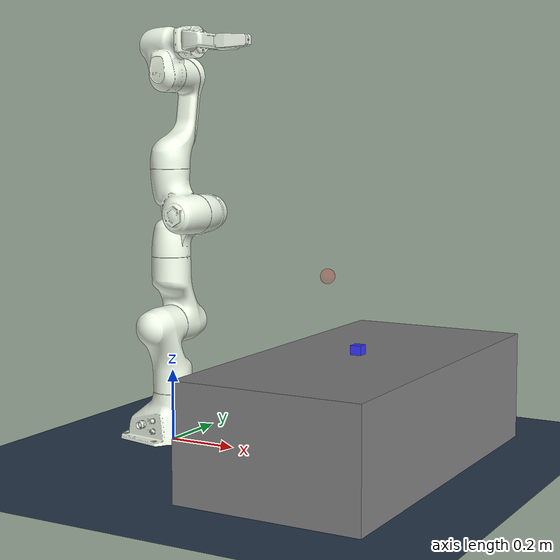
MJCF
<?xml version="1.0" encoding="utf-8"?>
<mujoco model="franka_reacher">
  <compiler meshdir=""/>
	<option noslip_iterations="5">
		<flag warmstart="enable"></flag>
	</option>
  <default>
    <!-- Contact softness params are solref[0,1] and set solimp[1] to 1
    Defaults solimp="0.9 0.95 0.01" solref="0.02 1" -->
    <geom solimp="0.9 1 0.01" solref="-1000 -100" condim="4"/>
  </default>

	<include file="panda/basic_scene.xml"/>
  <include file="panda/assets.xml"/>

	<worldbody>
    <include file="panda/chain0.xml"/>
    <site name="target0" pos="0.5 0 0.5" size="0.02 0.02 0.02" rgba="1 0 0 0.2" type="sphere"></site>

		<body pos="0.6 0 0.15" name="table0">
			<geom size="0.25 0.5 0.15" type="box" mass="2000"></geom>
      <body pos="-0.01 0 0.16" name="object0">
      <joint armature="0" axis="1 0 0" name="objx" damping="0" limited="false" pos="0 0 0" stiffness="0" type="slide"/>
      <joint armature="0" axis="0 1 0" name="objy" damping="0" limited="false" pos="0 0 0" stiffness="0" type="slide"/>
      <joint armature="0" axis="0 0 1" name="objz" damping="0" limited="false" pos="0 0 0" stiffness="0" type="slide"/>
			<geom size="0.015 0.015 0.015" type="box" density="100" rgba = "0.2 0.2 1 1" condim="4"></geom>
		</body>
		</body>

	</worldbody>
  <include file="panda/actuator0.xml"/>

  <keyframe> <!-- To visualize in mujoco's simulate executable -->
    <key qpos='0 0.1763 -0.000316538 -1.76272 -0.00844537 0.35995 0 0.04 0.04 0.02 0 0'/>
  </keyframe>

</mujoco>

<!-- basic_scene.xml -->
<mujocoinclude>

    <asset>
        <texture name="texplane" type="2d" builtin="checker" rgb1=".2 .3 .4" rgb2=".1 0.15 0.2"
                width="512" height="512"/>
        <material name="MatGnd" reflectance="0." texture="texplane" texrepeat="1 1" texuniform="true"/>
    </asset>

    <worldbody>
        <!-- hack: reduce shadows, and cast them behind the robot -->
        <light castshadow="false" directional="false" diffuse=".8 .8 .8" specular="0.3 0.3 0.3" pos="1 0 3" dir="-1 0 -3" />
        <light directional="false" diffuse=".8 .8 .8" specular="0.3 0.3 0.3" pos="1 0 3" dir="-1 0 -3" />
        <light directional="false" diffuse=".8 .8 .8" specular="0.3 0.3 0.3" pos="1 0 3" dir="-1 0 -3" />
        <geom name="ground" pos="0 0 0" size="5 5 10" material="MatGnd" type="plane" contype="1" conaffinity="1"/>
    </worldbody>
</mujocoinclude>

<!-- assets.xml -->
<mujocoinclude>
    <compiler angle="radian"/>
    <option timestep="0.002"/>
    <size nuser_actuator="5"/>

    <asset>
        <mesh name="link0_col" file="panda/meshes/collision/link0.stl"/>
        <mesh name="link1_col" file="panda/meshes/collision/link1.stl"/>
        <mesh name="link2_col" file="panda/meshes/collision/link2.stl"/>
        <mesh name="link3_col" file="panda/meshes/collision/link3.stl"/>
        <mesh name="link4_col" file="panda/meshes/collision/link4.stl"/>
        <mesh name="link5_col" file="panda/meshes/collision/link5.stl"/>
        <mesh name="link6_col" file="panda/meshes/collision/link6.stl"/>
        <mesh name="link7_col" file="panda/meshes/collision/link7.stl"/>
        <mesh name="hand_col" file="panda/meshes/collision/hand.stl"/>
        <mesh name="finger_col" file="panda/meshes/collision/finger.stl" scale='1.75 1.0 1.75'/>
        <mesh name="link0_viz" file="panda/meshes/visual/link0.stl"/>
        <mesh name="link1_viz" file="panda/meshes/visual/link1.stl"/>
        <mesh name="link2_viz" file="panda/meshes/visual/link2.stl"/>
        <mesh name="link3_viz" file="panda/meshes/visual/link3.stl"/>
        <mesh name="link4_viz" file="panda/meshes/visual/link4.stl"/>
        <mesh name="link5_viz" file="panda/meshes/visual/link5.stl"/>
        <mesh name="link6_viz" file="panda/meshes/visual/link6.stl"/>
        <mesh name="link7_viz" file="panda/meshes/visual/link7.stl"/>
        <mesh name="hand_viz" file="panda/meshes/visual/hand.stl"/>
        <mesh name="finger_viz" file="panda/meshes/collision/finger.stl" scale='1.75 1.0 1.75'/>
    </asset>

    <default>
        <default class="panda">
            <joint pos="0 0 0" axis="0 0 1" limited="true"/>
            <position forcelimited="true" ctrllimited="true" user="1002 40 2001 -0.005 0.005"/>
            <default class="panda_viz">
                <geom contype="0" conaffinity="0" group="0" type="mesh" rgba=".95 .99 .92 1" mass="0"/>
            </default>

            <default class="panda_col">
                <geom contype="1" conaffinity="1" group="3" type="mesh" rgba=".5 .6 .7 1"/>
            </default>
            <default class="panda_arm">
                <joint damping="100"/>
            </default>
             <default class="panda_forearm">
                <joint damping="10"/>
            </default>
             <default class="panda_finger">
                <joint damping="100" armature='5'/>
                <geom friction="1 0.5 0.0001" solref="0.01 1" solimp="0.8 0.9 0.001" margin="0.001" user="0" rgba="0.5 0.6 0.7 .4" contype="1" conaffinity="0" condim="6" group="3" />
                <position user="1002 40 2001 -0.0001 0.0001"/>
            </default>
        </default>

        <default class="panda_overlay">
            <joint limited="false" damping="1000" armature="1" frictionloss="10"/>
            <geom contype="0" conaffinity="0" group="2" type="mesh" rgba=".42 0.42 0.42 .5"/>
        </default>
    </default>

    <sensor>
        <jointpos name="fr_arm_jp1" joint="panda0_joint1"/>
        <jointpos name="fr_arm_jp2" joint="panda0_joint2"/>
        <jointpos name="fr_arm_jp3" joint="panda0_joint3"/>
        <jointpos name="fr_arm_jp4" joint="panda0_joint4"/>
        <jointpos name="fr_arm_jp5" joint="panda0_joint5"/>
        <jointpos name="fr_arm_jp6" joint="panda0_joint6"/>
        <jointpos name="fr_arm_jp7" joint="panda0_joint7"/>
        <jointpos name="fr_fin_jp1" joint="panda0_finger_joint1"/>
        <jointpos name="fr_fin_jp2" joint="panda0_finger_joint2"/>
        <jointvel name="fr_arm_jv1" joint="panda0_joint1"/>
        <jointvel name="fr_arm_jv2" joint="panda0_joint2"/>
        <jointvel name="fr_arm_jv3" joint="panda0_joint3"/>
        <jointvel name="fr_arm_jv4" joint="panda0_joint4"/>
        <jointvel name="fr_arm_jv5" joint="panda0_joint5"/>
        <jointvel name="fr_arm_jv6" joint="panda0_joint6"/>
        <jointvel name="fr_arm_jv7" joint="panda0_joint7"/>
        <jointvel name="fr_fin_jv1" joint="panda0_finger_joint1"/>
        <jointvel name="fr_fin_jv2" joint="panda0_finger_joint2"/>
    </sensor>

</mujocoinclude>

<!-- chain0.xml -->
<mujocoinclude>

<!-- Robot limits pulled from https://frankaemika.github.io/docs/control_parameters.html#constants -->

    <body name="panda0_link0" childclass="panda" >
        <geom class="panda_viz" mesh="link0_viz"/>
        <geom class="panda_col" mesh="link0_col" mass="2.91242"/>
        <body name="panda0_link1" pos="0 0 0.333">
            <joint name="panda0_joint1" range="-2.8973 2.8973" class="panda_arm"/>
            <geom class="panda_viz" mesh="link1_viz"/>
            <geom class="panda_col" mesh="link1_col" mass="2.7063"/>
            <body name="panda0_link2" pos="0 0 0" quat="0.707107 -0.707107 0 0">
                <joint name="panda0_joint2" range="-1.7628 1.7628" class="panda_arm"/>
                <geom class="panda_viz" mesh="link2_viz"/>
                <geom class="panda_col" mesh="link2_col" mass="2.73046"/>
                <body name="panda0_link3" pos="0 -0.316 0" quat="0.707107 0.707107 0 0">
                    <joint name="panda0_joint3" range="-2.8973 2.8973" class="panda_arm"/>
                    <geom class="panda_viz" mesh="link3_viz"/>
                    <geom class="panda_col" mesh="link3_col" mass="2.04104"/>
                    <body name="panda0_link4" pos="0.0825 0 0" quat="0.707107 0.707107 0 0">
                        <joint name="panda0_joint4" range="-3.0718 -0.4" class="panda_arm"/>
                        <geom class="panda_viz" mesh="link4_viz"/>
                        <geom class="panda_col" mesh="link4_col" mass="2.08129"/>
                        <body name="panda0_link5" pos="-0.0825 0.384 0" quat="0.707107 -0.707107 0 0">
                            <joint name="panda0_joint5" range="-2.8973 2.8973" class="panda_forearm"/>
                            <geom class="panda_viz" mesh="link5_viz"/>
                            <geom class="panda_col" mesh="link5_col" mass="3.00049"/>
                            <body name="panda0_link6" pos="0 0 0" euler='1.57 0 1.57'>
                                <joint name="panda0_joint6" range="-1.6573 2.1127" class="panda_forearm"/>
                                <geom class="panda_viz" mesh="link6_viz"/>
                                <geom class="panda_col" mesh="link6_col" mass="1.3235"/>
                                <body name="panda0_link7" pos="0.088 0 0" euler='1.57 0 0.7854'>
                                    <joint name="panda0_joint7" range="-2.8973 2.8973" class="panda_forearm"/>
                                    <geom class="panda_viz" mesh="link7_viz"/>
                                    <geom class="panda_col" mesh="link7_col" mass="0.2"/>
                                    <geom pos="0 0 0.107" quat="0.92388 0 0 -0.382683" class="panda_viz" mesh="hand_viz"/>
                                    <geom pos="0 0 0.107" quat="0.92388 0 0 -0.382683" class="panda_col" mesh="hand_col" mass="0.81909"/>
                                    <site name='panda0_end_effector' pos='0 0 .250' size='0.01' euler='0 0 -0.785398'/>
                                    <body name="panda0_leftfinger" pos="0 0 0.1654" quat="0.92388 0 0 -0.382683" childclass='panda_finger'>
                                        <inertial pos="-1.57863e-05 0.0118731 0.0434103" quat="0.705868 0.0310348 -0.0314925 0.706962" mass="0.0927059" diaginertia="6.57134e-05 6.09611e-05 1.09932e-05" />
                                        <joint name="panda0_finger_joint1"  axis="0 1 0" type="slide" range="0 0.04" class="panda_finger"/>
                                        <geom class="panda_viz" mesh="finger_viz"/>
                                        <geom size="0.0070" fromto=".009 .006 .0875   -.009 .009 .0875" type="capsule" />
                                        <geom size="0.0070" fromto=".009 .009 .0875   -.009 .006 .0875" type="capsule" />

                                        <geom size="0.0075" fromto=".009 .007 .0775   -.009 .010 .0775" type="capsule" />
                                        <geom size="0.0075" fromto=".009 .010 .0775   -.009 .007 .0775" type="capsule" />

                                        <geom size="0.0082" fromto=".009 .008 .0675   -.009 .011 .0675" type="capsule" />
                                        <geom size="0.0082" fromto=".009 .011 .0675   -.009 .008 .0675" type="capsule" />

                                        <geom size="0.0090" fromto=".009 .009 .0575   -.009 .012 .0575" type="capsule" />
                                        <geom size="0.0090" fromto=".009 .012 .0575   -.009 .009 .0575" type="capsule" />

                                        <geom size="0.0100" fromto=".009 .0105 .0475   -.009 .0135 .0475" type="capsule" />
                                        <geom size="0.0100" fromto=".009 .0135 .0475   -.009 .0105 .0475" type="capsule" />

                                        <geom size="0.0110" fromto=".009 .012 .035   -.009 .015 .035" type="capsule" />
                                        <geom size="0.0110" fromto=".009 .015 .035   -.009 .012 .035" type="capsule" />

                                        <geom size="0.0185 0.0120 0.0175" pos="0 0.014 0.015" type="box" euler='.03 0 0' />

                                    </body>
                                    <body name="panda0_rightfinger" pos="0 0 0.1654" quat="0.92388 0 0 -0.382683"  childclass='panda_finger'>
                                        <inertial pos="1.57863e-05 -0.0118731 0.0434103" quat="0.705868 -0.0310348 0.0314925 0.706962" mass="0.0927059" diaginertia="6.57134e-05 6.09611e-05 1.09932e-05" />
                                        <joint name="panda0_finger_joint2" axis="0 -1 0" type="slide" range="0 0.04" class="panda_finger"/>
                                        <geom quat="0 0 0 1" class="panda_viz" mesh="finger_viz"/>
                                        <geom size="0.0070" fromto=".009 -.006 .0875   -.009 -.009 .0875" type="capsule" />
                                        <geom size="0.0070" fromto=".009 -.009 .0875   -.009 -.006 .0875" type="capsule" />

                                        <geom size="0.0075" fromto=".009 -.007 .0775   -.009 -.010 .0775" type="capsule" />
                                        <geom size="0.0075" fromto=".009 -.010 .0775   -.009 -.007 .0775" type="capsule" />

                                        <geom size="0.0082" fromto=".009 -.008 .0675   -.009 -.011 .0675" type="capsule" />
                                        <geom size="0.0082" fromto=".009 -.011 .0675   -.009 -.008 .0675" type="capsule" />

                                        <geom size="0.0090" fromto=".009 -.009 .0575   -.009 -.012 .0575" type="capsule" />
                                        <geom size="0.0090" fromto=".009 -.012 .0575   -.009 -.009 .0575" type="capsule" />

                                        <geom size="0.0100" fromto=".009 -.0105 .0475   -.009 -.0135 .0475" type="capsule" />
                                        <geom size="0.0100" fromto=".009 -.0135 .0475   -.009 -.0105 .0475" type="capsule" />

                                        <geom size="0.0110" fromto=".009 -.012 .035   -.009 -.015 .035" type="capsule" />
                                        <geom size="0.0110" fromto=".009 -.015 .035   -.009 -.012 .035" type="capsule" />

                                        <geom size="0.0185 0.0120 0.0175" pos="0 -.014 0.015" type="box" euler='-.03 0 0' />
                                    </body>
                                </body>
                            </body>
                        </body>
                    </body>
                </body>
            </body>
        </body>
    </body>
</mujocoinclude>

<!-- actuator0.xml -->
<mujocoinclude>

    <actuator>
        <position name="panda0_joint1" joint="panda0_joint1" class="panda" kp="870" forcerange="-87 87" ctrlrange="-2.9671 2.9671"/> <!-- velocity="2.1750" -->
        <position name="panda0_joint2" joint="panda0_joint2" class="panda" kp="870" forcerange="-87 87" ctrlrange="-1.8326 1.8326"/> <!-- velocity="2.1750" -->
        <position name="panda0_joint3" joint="panda0_joint3" class="panda" kp="870" forcerange="-87 87" ctrlrange="-2.9671 2.9671"/> <!-- velocity="2.1750" -->
        <position name="panda0_joint4" joint="panda0_joint4" class="panda" kp="870" forcerange="-87 87" ctrlrange="-3.1416 0.0"/> <!-- velocity="2.1750" -->
        <position name="panda0_joint5" joint="panda0_joint5" class="panda" kp="120" forcerange="-12 12" ctrlrange="-2.9671 2.9671"/> <!-- velocity="2.6100" -->
        <position name="panda0_joint6" joint="panda0_joint6" class="panda" kp="120" forcerange="-12 12" ctrlrange="-1.66 2.1817"/> <!-- velocity="2.6100" -->
        <position name="panda0_joint7" joint="panda0_joint7" class="panda" kp="120" forcerange="-12 12" ctrlrange="-2.9671 2.9671"/> <!-- velocity="2.9671" -->
        <position name="r_gripper_finger_joint" joint="panda0_finger_joint1" class="panda_finger" kp="500" forcerange="-70 70" ctrlrange="0 0.04"/> <!-- velocity=".2" -->
        <position name="l_gripper_finger_joint" joint="panda0_finger_joint2" class="panda_finger" kp="500" forcerange="-70 70" ctrlrange="0 0.04"/> <!-- velocity=".2" -->
    </actuator>
</mujocoinclude>
